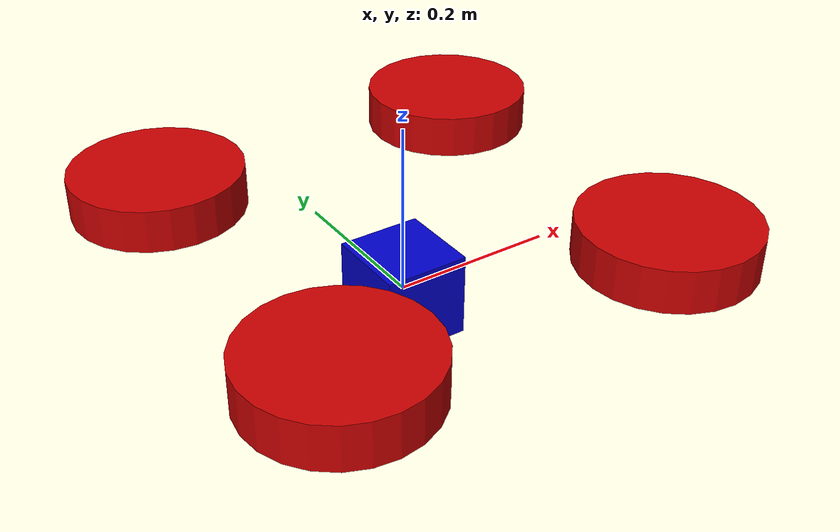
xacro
<?xml version="1.0"?>
<robot name="gesture_drone" xmlns:xacro="http://www.ros.org/wiki/xacro">
  <!-- Base Link -->
  <link name="base_link">
    <visual>
      <geometry>
        <box size="0.1 0.1 0.1"/>
      </geometry>
      <material name="blue">
        <color rgba="0 0 0.8 1"/>
      </material>
    </visual>
    <collision>
      <geometry>
        <box size="0.1 0.1 0.1"/>
      </geometry>
    </collision>
    <inertial>
      <mass value="1.0"/>
      <inertia ixx="0.1" ixy="0" ixz="0" iyy="0.1" iyz="0" izz="0.1"/>
    </inertial>
  </link>

  <!-- Motor Links -->
  <link name="rotor1">
    <visual>
      <geometry>
        <cylinder length="0.05" radius="0.1"/>
      </geometry>
      <material name="red">
        <color rgba="0.8 0 0 1"/>
      </material>
    </visual>
    <collision>
      <geometry>
        <cylinder length="0.05" radius="0.1"/>
      </geometry>
    </collision>
    <inertial>
      <mass value="0.1"/>
      <inertia ixx="0.001" ixy="0" ixz="0" iyy="0.001" iyz="0" izz="0.001"/>
    </inertial>
  </link>

  <link name="rotor2">
    <visual>
      <geometry>
        <cylinder length="0.05" radius="0.1"/>
      </geometry>
      <material name="red">
        <color rgba="0.8 0 0 1"/>
      </material>
    </visual>
    <collision>
      <geometry>
        <cylinder length="0.05" radius="0.1"/>
      </geometry>
    </collision>
    <inertial>
      <mass value="0.1"/>
      <inertia ixx="0.001" ixy="0" ixz="0" iyy="0.001" iyz="0" izz="0.001"/>
    </inertial>
  </link>

  <link name="rotor3">
    <visual>
      <geometry>
        <cylinder length="0.05" radius="0.1"/>
      </geometry>
      <material name="red">
        <color rgba="0.8 0 0 1"/>
      </material>
    </visual>
    <collision>
      <geometry>
        <cylinder length="0.05" radius="0.1"/>
      </geometry>
    </collision>
    <inertial>
      <mass value="0.1"/>
      <inertia ixx="0.001" ixy="0" ixz="0" iyy="0.001" iyz="0" izz="0.001"/>
    </inertial>
  </link>

  <link name="rotor4">
    <visual>
      <geometry>
        <cylinder length="0.05" radius="0.1"/>
      </geometry>
      <material name="red">
        <color rgba="0.8 0 0 1"/>
      </material>
    </visual>
    <collision>
      <geometry>
        <cylinder length="0.05" radius="0.1"/>
      </geometry>
    </collision>
    <inertial>
      <mass value="0.1"/>
      <inertia ixx="0.001" ixy="0" ixz="0" iyy="0.001" iyz="0" izz="0.001"/>
    </inertial>
  </link>

  <!-- Motor Joints -->
  <joint name="rotor1_connector_joint" type="continuous">
    <parent link="base_link"/>
    <child link="rotor1"/>
    <axis xyz="0 0 1"/>
    <origin xyz="0.2 0.2 0.1" rpy="0 0 0"/>
  </joint>

  <joint name="rotor2_connector_joint" type="continuous">
    <parent link="base_link"/>
    <child link="rotor2"/>
    <axis xyz="0 0 1"/>
    <origin xyz="-0.2 0.2 0.1" rpy="0 0 0"/>
  </joint>

  <joint name="rotor3_connector_joint" type="continuous">
    <parent link="base_link"/>
    <child link="rotor3"/>
    <axis xyz="0 0 1"/>
    <origin xyz="0.2 -0.2 0.1" rpy="0 0 0"/>
  </joint>

  <joint name="rotor4_connector_joint" type="continuous">
    <parent link="base_link"/>
    <child link="rotor4"/>
    <axis xyz="0 0 1"/>
    <origin xyz="-0.2 -0.2 0.1" rpy="0 0 0"/>
  </joint>

  <!-- ros2_control -->

  <!-- Gazebo plugins -->
  <gazebo>
    <!-- Simple joint state publisher plugin instead of ros2_control -->
    <plugin name="joint_state_publisher" filename="libgazebo_ros_joint_state_publisher.so">
      <ros>
        <namespace>/</namespace>
      </ros>
      <update_rate>100</update_rate>
      <joint_name>rotor1_connector_joint</joint_name>
      <joint_name>rotor2_connector_joint</joint_name>
      <joint_name>rotor3_connector_joint</joint_name>
      <joint_name>rotor4_connector_joint</joint_name>
    </plugin>

    <!-- Simple plugin to receive velocity commands -->
    <plugin name="drone_controller" filename="libgazebo_ros_planar_move.so">
      <ros>
        <namespace>/</namespace>
        <remapping>cmd_vel:=/ImprovedDrone/cmd_vel</remapping>
        <remapping>odom:=/ImprovedDrone/odom</remapping>
      </ros>
      <update_rate>100</update_rate>
      <command_topic>/ImprovedDrone/cmd_vel</command_topic>
      <odometry_topic>/ImprovedDrone/odom</odometry_topic>
      <odometry_frame>odom</odometry_frame>
      <robot_base_frame>base_link</robot_base_frame>
    </plugin>
  </gazebo>
</robot>
